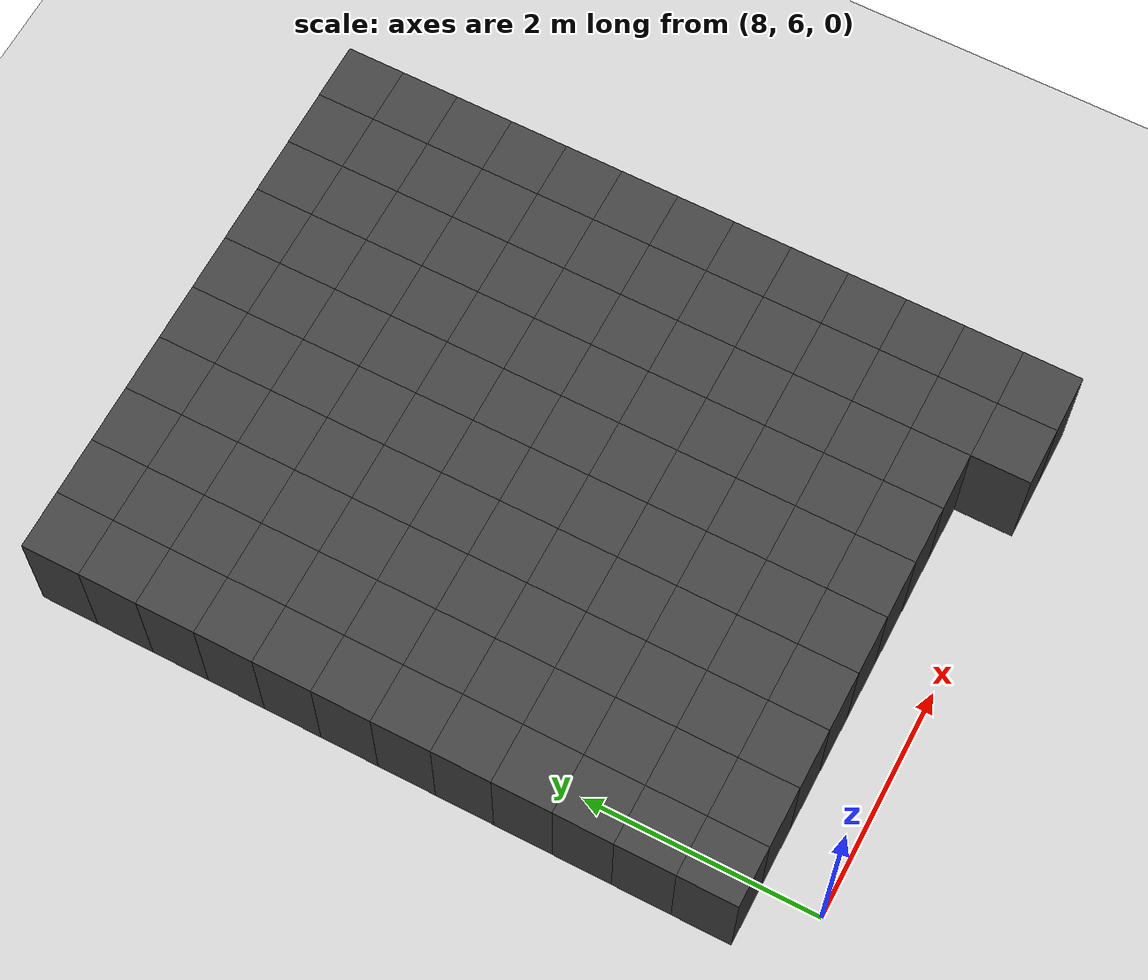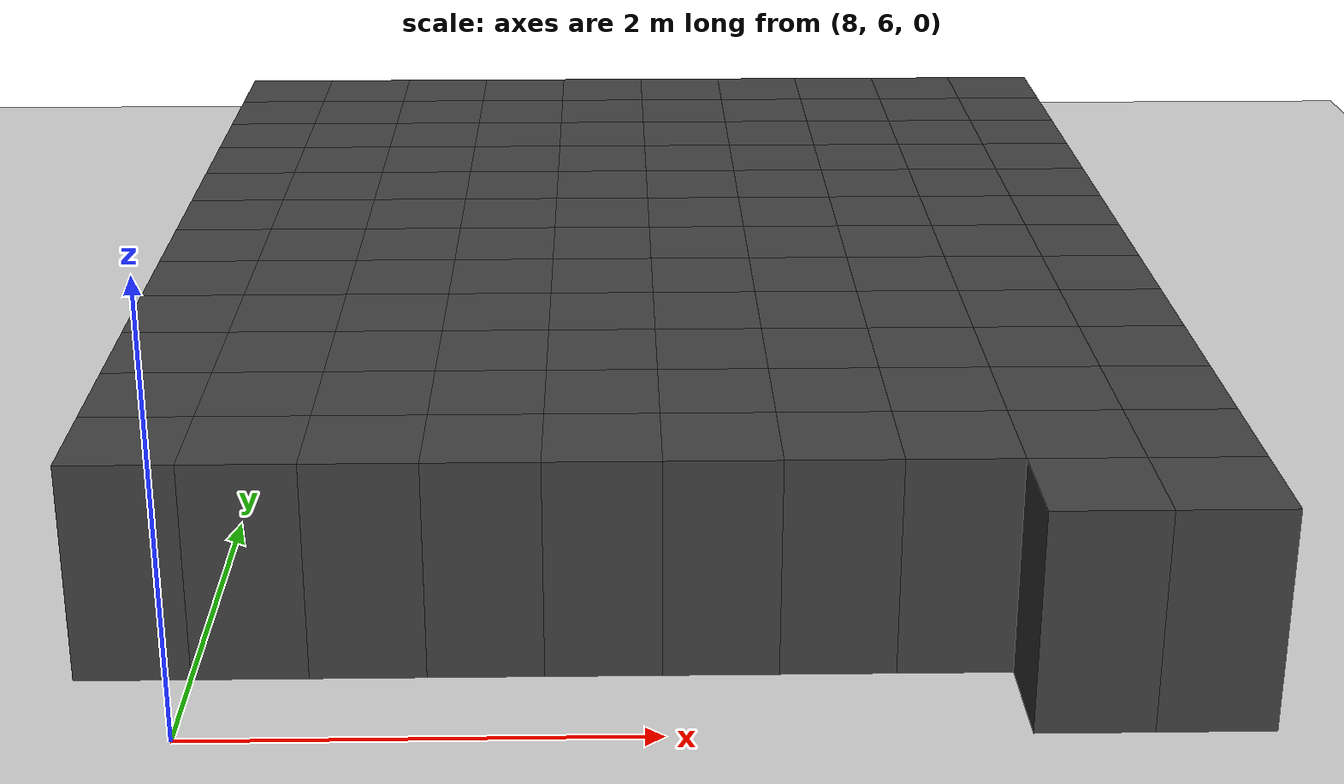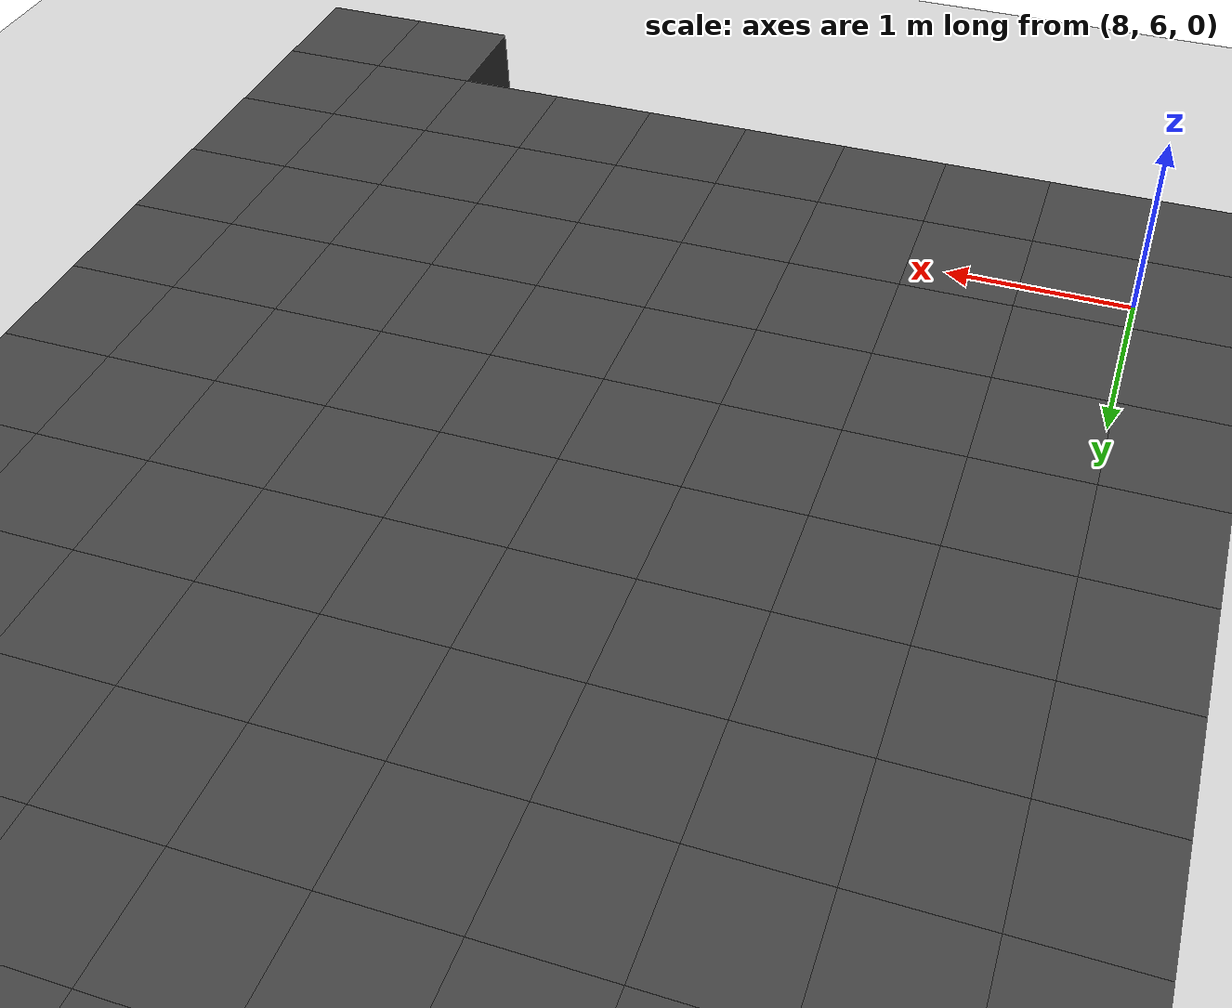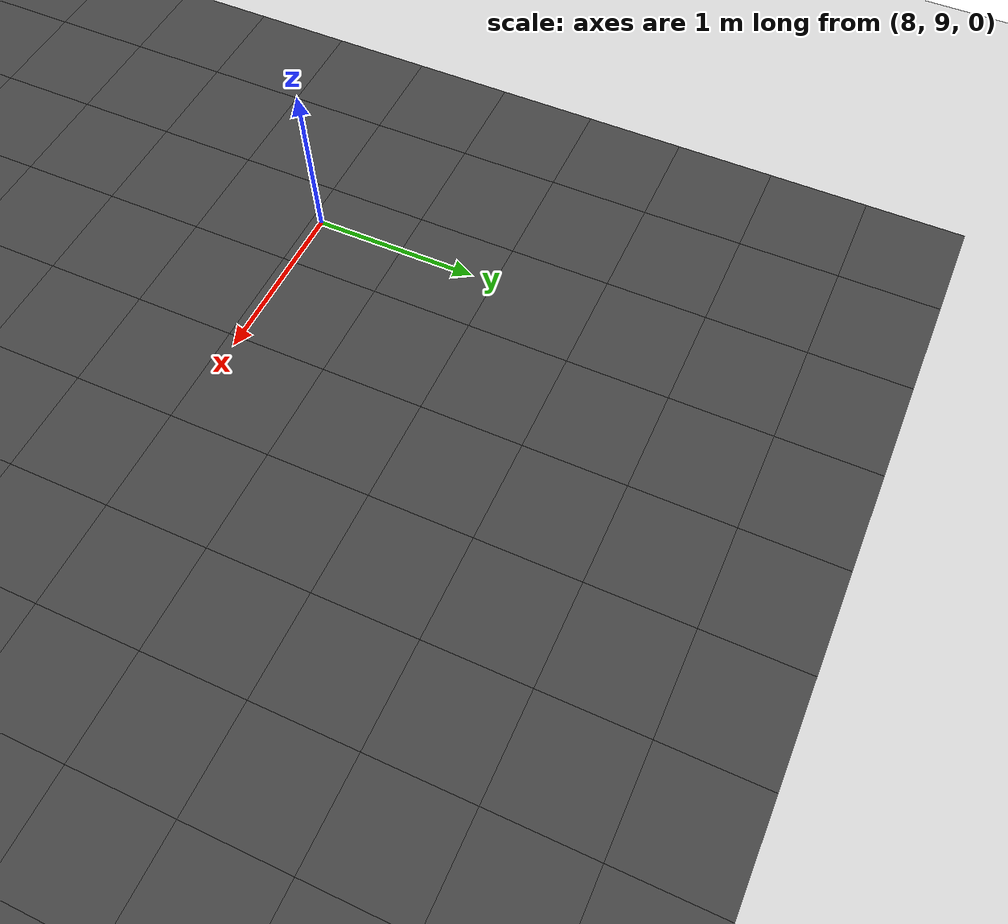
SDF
<sdf version="1.7">
 <world name="map_14888">
  <model name="ground_plane">
   <static>true</static>
   <link name="link">
    <collision name="collision">
     <geometry><plane><normal>0 0 1</normal><size>200 200</size></plane></geometry>
    </collision>
    <visual name="visual">
     <geometry><plane><normal>0 0 1</normal><size>200 200</size></plane></geometry>
     <material><ambient>0.8 0.8 0.8 1</ambient><diffuse>0.8 0.8 0.8 1</diffuse></material>
    </visual>
   </link>
  </model>
  <model name="maze_environment">
   <static>true</static>
   <link name="wall_40">
    <pose>7.750 12.250 0.500 0 0 0</pose>
    <collision name="col"><geometry><box><size>0.5 0.5 1.0</size></box></geometry></collision>
    <visual name="vis">
     <geometry><box><size>0.5 0.5 1.0</size></box></geometry>
     <material><ambient>0.15 0.15 0.15 1</ambient><diffuse>0.25 0.25 0.25 1</diffuse></material>
    </visual>
   </link>
   <link name="wall_41">
    <pose>8.250 12.250 0.500 0 0 0</pose>
    <collision name="col"><geometry><box><size>0.5 0.5 1.0</size></box></geometry></collision>
    <visual name="vis">
     <geometry><box><size>0.5 0.5 1.0</size></box></geometry>
     <material><ambient>0.15 0.15 0.15 1</ambient><diffuse>0.25 0.25 0.25 1</diffuse></material>
    </visual>
   </link>
   <link name="wall_42">
    <pose>8.750 12.250 0.500 0 0 0</pose>
    <collision name="col"><geometry><box><size>0.5 0.5 1.0</size></box></geometry></collision>
    <visual name="vis">
     <geometry><box><size>0.5 0.5 1.0</size></box></geometry>
     <material><ambient>0.15 0.15 0.15 1</ambient><diffuse>0.25 0.25 0.25 1</diffuse></material>
    </visual>
   </link>
   <link name="wall_43">
    <pose>9.250 12.250 0.500 0 0 0</pose>
    <collision name="col"><geometry><box><size>0.5 0.5 1.0</size></box></geometry></collision>
    <visual name="vis">
     <geometry><box><size>0.5 0.5 1.0</size></box></geometry>
     <material><ambient>0.15 0.15 0.15 1</ambient><diffuse>0.25 0.25 0.25 1</diffuse></material>
    </visual>
   </link>
   <link name="wall_44">
    <pose>9.750 12.250 0.500 0 0 0</pose>
    <collision name="col"><geometry><box><size>0.5 0.5 1.0</size></box></geometry></collision>
    <visual name="vis">
     <geometry><box><size>0.5 0.5 1.0</size></box></geometry>
     <material><ambient>0.15 0.15 0.15 1</ambient><diffuse>0.25 0.25 0.25 1</diffuse></material>
    </visual>
   </link>
   <link name="wall_45">
    <pose>10.250 12.250 0.500 0 0 0</pose>
    <collision name="col"><geometry><box><size>0.5 0.5 1.0</size></box></geometry></collision>
    <visual name="vis">
     <geometry><box><size>0.5 0.5 1.0</size></box></geometry>
     <material><ambient>0.15 0.15 0.15 1</ambient><diffuse>0.25 0.25 0.25 1</diffuse></material>
    </visual>
   </link>
   <link name="wall_46">
    <pose>10.750 12.250 0.500 0 0 0</pose>
    <collision name="col"><geometry><box><size>0.5 0.5 1.0</size></box></geometry></collision>
    <visual name="vis">
     <geometry><box><size>0.5 0.5 1.0</size></box></geometry>
     <material><ambient>0.15 0.15 0.15 1</ambient><diffuse>0.25 0.25 0.25 1</diffuse></material>
    </visual>
   </link>
   <link name="wall_47">
    <pose>11.250 12.250 0.500 0 0 0</pose>
    <collision name="col"><geometry><box><size>0.5 0.5 1.0</size></box></geometry></collision>
    <visual name="vis">
     <geometry><box><size>0.5 0.5 1.0</size></box></geometry>
     <material><ambient>0.15 0.15 0.15 1</ambient><diffuse>0.25 0.25 0.25 1</diffuse></material>
    </visual>
   </link>
   <link name="wall_48">
    <pose>11.750 12.250 0.500 0 0 0</pose>
    <collision name="col"><geometry><box><size>0.5 0.5 1.0</size></box></geometry></collision>
    <visual name="vis">
     <geometry><box><size>0.5 0.5 1.0</size></box></geometry>
     <material><ambient>0.15 0.15 0.15 1</ambient><diffuse>0.25 0.25 0.25 1</diffuse></material>
    </visual>
   </link>
   <link name="wall_49">
    <pose>12.250 12.250 0.500 0 0 0</pose>
    <collision name="col"><geometry><box><size>0.5 0.5 1.0</size></box></geometry></collision>
    <visual name="vis">
     <geometry><box><size>0.5 0.5 1.0</size></box></geometry>
     <material><ambient>0.15 0.15 0.15 1</ambient><diffuse>0.25 0.25 0.25 1</diffuse></material>
    </visual>
   </link>
   <link name="wall_87">
    <pose>7.750 11.750 0.500 0 0 0</pose>
    <collision name="col"><geometry><box><size>0.5 0.5 1.0</size></box></geometry></collision>
    <visual name="vis">
     <geometry><box><size>0.5 0.5 1.0</size></box></geometry>
     <material><ambient>0.15 0.15 0.15 1</ambient><diffuse>0.25 0.25 0.25 1</diffuse></material>
    </visual>
   </link>
   <link name="wall_88">
    <pose>8.250 11.750 0.500 0 0 0</pose>
    <collision name="col"><geometry><box><size>0.5 0.5 1.0</size></box></geometry></collision>
    <visual name="vis">
     <geometry><box><size>0.5 0.5 1.0</size></box></geometry>
     <material><ambient>0.15 0.15 0.15 1</ambient><diffuse>0.25 0.25 0.25 1</diffuse></material>
    </visual>
   </link>
   <link name="wall_89">
    <pose>8.750 11.750 0.500 0 0 0</pose>
    <collision name="col"><geometry><box><size>0.5 0.5 1.0</size></box></geometry></collision>
    <visual name="vis">
     <geometry><box><size>0.5 0.5 1.0</size></box></geometry>
     <material><ambient>0.15 0.15 0.15 1</ambient><diffuse>0.25 0.25 0.25 1</diffuse></material>
    </visual>
   </link>
   <link name="wall_90">
    <pose>9.250 11.750 0.500 0 0 0</pose>
    <collision name="col"><geometry><box><size>0.5 0.5 1.0</size></box></geometry></collision>
    <visual name="vis">
     <geometry><box><size>0.5 0.5 1.0</size></box></geometry>
     <material><ambient>0.15 0.15 0.15 1</ambient><diffuse>0.25 0.25 0.25 1</diffuse></material>
    </visual>
   </link>
   <link name="wall_91">
    <pose>9.750 11.750 0.500 0 0 0</pose>
    <collision name="col"><geometry><box><size>0.5 0.5 1.0</size></box></geometry></collision>
    <visual name="vis">
     <geometry><box><size>0.5 0.5 1.0</size></box></geometry>
     <material><ambient>0.15 0.15 0.15 1</ambient><diffuse>0.25 0.25 0.25 1</diffuse></material>
    </visual>
   </link>
   <link name="wall_92">
    <pose>10.250 11.750 0.500 0 0 0</pose>
    <collision name="col"><geometry><box><size>0.5 0.5 1.0</size></box></geometry></collision>
    <visual name="vis">
     <geometry><box><size>0.5 0.5 1.0</size></box></geometry>
     <material><ambient>0.15 0.15 0.15 1</ambient><diffuse>0.25 0.25 0.25 1</diffuse></material>
    </visual>
   </link>
   <link name="wall_93">
    <pose>10.750 11.750 0.500 0 0 0</pose>
    <collision name="col"><geometry><box><size>0.5 0.5 1.0</size></box></geometry></collision>
    <visual name="vis">
     <geometry><box><size>0.5 0.5 1.0</size></box></geometry>
     <material><ambient>0.15 0.15 0.15 1</ambient><diffuse>0.25 0.25 0.25 1</diffuse></material>
    </visual>
   </link>
   <link name="wall_94">
    <pose>11.250 11.750 0.500 0 0 0</pose>
    <collision name="col"><geometry><box><size>0.5 0.5 1.0</size></box></geometry></collision>
    <visual name="vis">
     <geometry><box><size>0.5 0.5 1.0</size></box></geometry>
     <material><ambient>0.15 0.15 0.15 1</ambient><diffuse>0.25 0.25 0.25 1</diffuse></material>
    </visual>
   </link>
   <link name="wall_95">
    <pose>11.750 11.750 0.500 0 0 0</pose>
    <collision name="col"><geometry><box><size>0.5 0.5 1.0</size></box></geometry></collision>
    <visual name="vis">
     <geometry><box><size>0.5 0.5 1.0</size></box></geometry>
     <material><ambient>0.15 0.15 0.15 1</ambient><diffuse>0.25 0.25 0.25 1</diffuse></material>
    </visual>
   </link>
   <link name="wall_96">
    <pose>12.250 11.750 0.500 0 0 0</pose>
    <collision name="col"><geometry><box><size>0.5 0.5 1.0</size></box></geometry></collision>
    <visual name="vis">
     <geometry><box><size>0.5 0.5 1.0</size></box></geometry>
     <material><ambient>0.15 0.15 0.15 1</ambient><diffuse>0.25 0.25 0.25 1</diffuse></material>
    </visual>
   </link>
   <link name="wall_128">
    <pose>7.750 11.250 0.500 0 0 0</pose>
    <collision name="col"><geometry><box><size>0.5 0.5 1.0</size></box></geometry></collision>
    <visual name="vis">
     <geometry><box><size>0.5 0.5 1.0</size></box></geometry>
     <material><ambient>0.15 0.15 0.15 1</ambient><diffuse>0.25 0.25 0.25 1</diffuse></material>
    </visual>
   </link>
   <link name="wall_129">
    <pose>8.250 11.250 0.500 0 0 0</pose>
    <collision name="col"><geometry><box><size>0.5 0.5 1.0</size></box></geometry></collision>
    <visual name="vis">
     <geometry><box><size>0.5 0.5 1.0</size></box></geometry>
     <material><ambient>0.15 0.15 0.15 1</ambient><diffuse>0.25 0.25 0.25 1</diffuse></material>
    </visual>
   </link>
   <link name="wall_130">
    <pose>8.750 11.250 0.500 0 0 0</pose>
    <collision name="col"><geometry><box><size>0.5 0.5 1.0</size></box></geometry></collision>
    <visual name="vis">
     <geometry><box><size>0.5 0.5 1.0</size></box></geometry>
     <material><ambient>0.15 0.15 0.15 1</ambient><diffuse>0.25 0.25 0.25 1</diffuse></material>
    </visual>
   </link>
   <link name="wall_131">
    <pose>9.250 11.250 0.500 0 0 0</pose>
    <collision name="col"><geometry><box><size>0.5 0.5 1.0</size></box></geometry></collision>
    <visual name="vis">
     <geometry><box><size>0.5 0.5 1.0</size></box></geometry>
     <material><ambient>0.15 0.15 0.15 1</ambient><diffuse>0.25 0.25 0.25 1</diffuse></material>
    </visual>
   </link>
   <link name="wall_132">
    <pose>9.750 11.250 0.500 0 0 0</pose>
    <collision name="col"><geometry><box><size>0.5 0.5 1.0</size></box></geometry></collision>
    <visual name="vis">
     <geometry><box><size>0.5 0.5 1.0</size></box></geometry>
     <material><ambient>0.15 0.15 0.15 1</ambient><diffuse>0.25 0.25 0.25 1</diffuse></material>
    </visual>
   </link>
   <link name="wall_133">
    <pose>10.250 11.250 0.500 0 0 0</pose>
    <collision name="col"><geometry><box><size>0.5 0.5 1.0</size></box></geometry></collision>
    <visual name="vis">
     <geometry><box><size>0.5 0.5 1.0</size></box></geometry>
     <material><ambient>0.15 0.15 0.15 1</ambient><diffuse>0.25 0.25 0.25 1</diffuse></material>
    </visual>
   </link>
   <link name="wall_134">
    <pose>10.750 11.250 0.500 0 0 0</pose>
    <collision name="col"><geometry><box><size>0.5 0.5 1.0</size></box></geometry></collision>
    <visual name="vis">
     <geometry><box><size>0.5 0.5 1.0</size></box></geometry>
     <material><ambient>0.15 0.15 0.15 1</ambient><diffuse>0.25 0.25 0.25 1</diffuse></material>
    </visual>
   </link>
   <link name="wall_135">
    <pose>11.250 11.250 0.500 0 0 0</pose>
    <collision name="col"><geometry><box><size>0.5 0.5 1.0</size></box></geometry></collision>
    <visual name="vis">
     <geometry><box><size>0.5 0.5 1.0</size></box></geometry>
     <material><ambient>0.15 0.15 0.15 1</ambient><diffuse>0.25 0.25 0.25 1</diffuse></material>
    </visual>
   </link>
   <link name="wall_136">
    <pose>11.750 11.250 0.500 0 0 0</pose>
    <collision name="col"><geometry><box><size>0.5 0.5 1.0</size></box></geometry></collision>
    <visual name="vis">
     <geometry><box><size>0.5 0.5 1.0</size></box></geometry>
     <material><ambient>0.15 0.15 0.15 1</ambient><diffuse>0.25 0.25 0.25 1</diffuse></material>
    </visual>
   </link>
   <link name="wall_137">
    <pose>12.250 11.250 0.500 0 0 0</pose>
    <collision name="col"><geometry><box><size>0.5 0.5 1.0</size></box></geometry></collision>
    <visual name="vis">
     <geometry><box><size>0.5 0.5 1.0</size></box></geometry>
     <material><ambient>0.15 0.15 0.15 1</ambient><diffuse>0.25 0.25 0.25 1</diffuse></material>
    </visual>
   </link>
   <link name="wall_169">
    <pose>7.750 10.750 0.500 0 0 0</pose>
    <collision name="col"><geometry><box><size>0.5 0.5 1.0</size></box></geometry></collision>
    <visual name="vis">
     <geometry><box><size>0.5 0.5 1.0</size></box></geometry>
     <material><ambient>0.15 0.15 0.15 1</ambient><diffuse>0.25 0.25 0.25 1</diffuse></material>
    </visual>
   </link>
   <link name="wall_170">
    <pose>8.250 10.750 0.500 0 0 0</pose>
    <collision name="col"><geometry><box><size>0.5 0.5 1.0</size></box></geometry></collision>
    <visual name="vis">
     <geometry><box><size>0.5 0.5 1.0</size></box></geometry>
     <material><ambient>0.15 0.15 0.15 1</ambient><diffuse>0.25 0.25 0.25 1</diffuse></material>
    </visual>
   </link>
   <link name="wall_171">
    <pose>8.750 10.750 0.500 0 0 0</pose>
    <collision name="col"><geometry><box><size>0.5 0.5 1.0</size></box></geometry></collision>
    <visual name="vis">
     <geometry><box><size>0.5 0.5 1.0</size></box></geometry>
     <material><ambient>0.15 0.15 0.15 1</ambient><diffuse>0.25 0.25 0.25 1</diffuse></material>
    </visual>
   </link>
   <link name="wall_172">
    <pose>9.250 10.750 0.500 0 0 0</pose>
    <collision name="col"><geometry><box><size>0.5 0.5 1.0</size></box></geometry></collision>
    <visual name="vis">
     <geometry><box><size>0.5 0.5 1.0</size></box></geometry>
     <material><ambient>0.15 0.15 0.15 1</ambient><diffuse>0.25 0.25 0.25 1</diffuse></material>
    </visual>
   </link>
   <link name="wall_173">
    <pose>9.750 10.750 0.500 0 0 0</pose>
    <collision name="col"><geometry><box><size>0.5 0.5 1.0</size></box></geometry></collision>
    <visual name="vis">
     <geometry><box><size>0.5 0.5 1.0</size></box></geometry>
     <material><ambient>0.15 0.15 0.15 1</ambient><diffuse>0.25 0.25 0.25 1</diffuse></material>
    </visual>
   </link>
   <link name="wall_174">
    <pose>10.250 10.750 0.500 0 0 0</pose>
    <collision name="col"><geometry><box><size>0.5 0.5 1.0</size></box></geometry></collision>
    <visual name="vis">
     <geometry><box><size>0.5 0.5 1.0</size></box></geometry>
     <material><ambient>0.15 0.15 0.15 1</ambient><diffuse>0.25 0.25 0.25 1</diffuse></material>
    </visual>
   </link>
   <link name="wall_175">
    <pose>10.750 10.750 0.500 0 0 0</pose>
    <collision name="col"><geometry><box><size>0.5 0.5 1.0</size></box></geometry></collision>
    <visual name="vis">
     <geometry><box><size>0.5 0.5 1.0</size></box></geometry>
     <material><ambient>0.15 0.15 0.15 1</ambient><diffuse>0.25 0.25 0.25 1</diffuse></material>
    </visual>
   </link>
   <link name="wall_176">
    <pose>11.250 10.750 0.500 0 0 0</pose>
    <collision name="col"><geometry><box><size>0.5 0.5 1.0</size></box></geometry></collision>
    <visual name="vis">
     <geometry><box><size>0.5 0.5 1.0</size></box></geometry>
     <material><ambient>0.15 0.15 0.15 1</ambient><diffuse>0.25 0.25 0.25 1</diffuse></material>
    </visual>
   </link>
   <link name="wall_177">
    <pose>11.750 10.750 0.500 0 0 0</pose>
    <collision name="col"><geometry><box><size>0.5 0.5 1.0</size></box></geometry></collision>
    <visual name="vis">
     <geometry><box><size>0.5 0.5 1.0</size></box></geometry>
     <material><ambient>0.15 0.15 0.15 1</ambient><diffuse>0.25 0.25 0.25 1</diffuse></material>
    </visual>
   </link>
   <link name="wall_178">
    <pose>12.250 10.750 0.500 0 0 0</pose>
    <collision name="col"><geometry><box><size>0.5 0.5 1.0</size></box></geometry></collision>
    <visual name="vis">
     <geometry><box><size>0.5 0.5 1.0</size></box></geometry>
     <material><ambient>0.15 0.15 0.15 1</ambient><diffuse>0.25 0.25 0.25 1</diffuse></material>
    </visual>
   </link>
   <link name="wall_212">
    <pose>7.750 10.250 0.500 0 0 0</pose>
    <collision name="col"><geometry><box><size>0.5 0.5 1.0</size></box></geometry></collision>
    <visual name="vis">
     <geometry><box><size>0.5 0.5 1.0</size></box></geometry>
     <material><ambient>0.15 0.15 0.15 1</ambient><diffuse>0.25 0.25 0.25 1</diffuse></material>
    </visual>
   </link>
   <link name="wall_213">
    <pose>8.250 10.250 0.500 0 0 0</pose>
    <collision name="col"><geometry><box><size>0.5 0.5 1.0</size></box></geometry></collision>
    <visual name="vis">
     <geometry><box><size>0.5 0.5 1.0</size></box></geometry>
     <material><ambient>0.15 0.15 0.15 1</ambient><diffuse>0.25 0.25 0.25 1</diffuse></material>
    </visual>
   </link>
   <link name="wall_214">
    <pose>8.750 10.250 0.500 0 0 0</pose>
    <collision name="col"><geometry><box><size>0.5 0.5 1.0</size></box></geometry></collision>
    <visual name="vis">
     <geometry><box><size>0.5 0.5 1.0</size></box></geometry>
     <material><ambient>0.15 0.15 0.15 1</ambient><diffuse>0.25 0.25 0.25 1</diffuse></material>
    </visual>
   </link>
   <link name="wall_215">
    <pose>9.250 10.250 0.500 0 0 0</pose>
    <collision name="col"><geometry><box><size>0.5 0.5 1.0</size></box></geometry></collision>
    <visual name="vis">
     <geometry><box><size>0.5 0.5 1.0</size></box></geometry>
     <material><ambient>0.15 0.15 0.15 1</ambient><diffuse>0.25 0.25 0.25 1</diffuse></material>
    </visual>
   </link>
   <link name="wall_216">
    <pose>9.750 10.250 0.500 0 0 0</pose>
    <collision name="col"><geometry><box><size>0.5 0.5 1.0</size></box></geometry></collision>
    <visual name="vis">
     <geometry><box><size>0.5 0.5 1.0</size></box></geometry>
     <material><ambient>0.15 0.15 0.15 1</ambient><diffuse>0.25 0.25 0.25 1</diffuse></material>
    </visual>
   </link>
   <link name="wall_217">
    <pose>10.250 10.250 0.500 0 0 0</pose>
    <collision name="col"><geometry><box><size>0.5 0.5 1.0</size></box></geometry></collision>
    <visual name="vis">
     <geometry><box><size>0.5 0.5 1.0</size></box></geometry>
     <material><ambient>0.15 0.15 0.15 1</ambient><diffuse>0.25 0.25 0.25 1</diffuse></material>
    </visual>
   </link>
   <link name="wall_218">
    <pose>10.750 10.250 0.500 0 0 0</pose>
    <collision name="col"><geometry><box><size>0.5 0.5 1.0</size></box></geometry></collision>
    <visual name="vis">
     <geometry><box><size>0.5 0.5 1.0</size></box></geometry>
     <material><ambient>0.15 0.15 0.15 1</ambient><diffuse>0.25 0.25 0.25 1</diffuse></material>
    </visual>
   </link>
   <link name="wall_219">
    <pose>11.250 10.250 0.500 0 0 0</pose>
    <collision name="col"><geometry><box><size>0.5 0.5 1.0</size></box></geometry></collision>
    <visual name="vis">
     <geometry><box><size>0.5 0.5 1.0</size></box></geometry>
     <material><ambient>0.15 0.15 0.15 1</ambient><diffuse>0.25 0.25 0.25 1</diffuse></material>
    </visual>
   </link>
   <link name="wall_220">
    <pose>11.750 10.250 0.500 0 0 0</pose>
    <collision name="col"><geometry><box><size>0.5 0.5 1.0</size></box></geometry></collision>
    <visual name="vis">
     <geometry><box><size>0.5 0.5 1.0</size></box></geometry>
     <material><ambient>0.15 0.15 0.15 1</ambient><diffuse>0.25 0.25 0.25 1</diffuse></material>
    </visual>
   </link>
   <link name="wall_221">
    <pose>12.250 10.250 0.500 0 0 0</pose>
    <collision name="col"><geometry><box><size>0.5 0.5 1.0</size></box></geometry></collision>
    <visual name="vis">
     <geometry><box><size>0.5 0.5 1.0</size></box></geometry>
     <material><ambient>0.15 0.15 0.15 1</ambient><diffuse>0.25 0.25 0.25 1</diffuse></material>
    </visual>
   </link>
   <link name="wall_254">
    <pose>7.750 9.750 0.500 0 0 0</pose>
    <collision name="col"><geometry><box><size>0.5 0.5 1.0</size></box></geometry></collision>
    <visual name="vis">
     <geometry><box><size>0.5 0.5 1.0</size></box></geometry>
     <material><ambient>0.15 0.15 0.15 1</ambient><diffuse>0.25 0.25 0.25 1</diffuse></material>
    </visual>
   </link>
   <link name="wall_255">
    <pose>8.250 9.750 0.500 0 0 0</pose>
    <collision name="col"><geometry><box><size>0.5 0.5 1.0</size></box></geometry></collision>
    <visual name="vis">
     <geometry><box><size>0.5 0.5 1.0</size></box></geometry>
     <material><ambient>0.15 0.15 0.15 1</ambient><diffuse>0.25 0.25 0.25 1</diffuse></material>
    </visual>
   </link>
   <link name="wall_256">
    <pose>8.750 9.750 0.500 0 0 0</pose>
    <collision name="col"><geometry><box><size>0.5 0.5 1.0</size></box></geometry></collision>
    <visual name="vis">
     <geometry><box><size>0.5 0.5 1.0</size></box></geometry>
     <material><ambient>0.15 0.15 0.15 1</ambient><diffuse>0.25 0.25 0.25 1</diffuse></material>
    </visual>
   </link>
   <link name="wall_257">
    <pose>9.250 9.750 0.500 0 0 0</pose>
    <collision name="col"><geometry><box><size>0.5 0.5 1.0</size></box></geometry></collision>
    <visual name="vis">
     <geometry><box><size>0.5 0.5 1.0</size></box></geometry>
     <material><ambient>0.15 0.15 0.15 1</ambient><diffuse>0.25 0.25 0.25 1</diffuse></material>
    </visual>
   </link>
   <link name="wall_258">
    <pose>9.750 9.750 0.500 0 0 0</pose>
    <collision name="col"><geometry><box><size>0.5 0.5 1.0</size></box></geometry></collision>
    <visual name="vis">
     <geometry><box><size>0.5 0.5 1.0</size></box></geometry>
     <material><ambient>0.15 0.15 0.15 1</ambient><diffuse>0.25 0.25 0.25 1</diffuse></material>
    </visual>
   </link>
   <link name="wall_259">
    <pose>10.250 9.750 0.500 0 0 0</pose>
    <collision name="col"><geometry><box><size>0.5 0.5 1.0</size></box></geometry></collision>
    <visual name="vis">
     <geometry><box><size>0.5 0.5 1.0</size></box></geometry>
     <material><ambient>0.15 0.15 0.15 1</ambient><diffuse>0.25 0.25 0.25 1</diffuse></material>
    </visual>
   </link>
   <link name="wall_260">
    <pose>10.750 9.750 0.500 0 0 0</pose>
    <collision name="col"><geometry><box><size>0.5 0.5 1.0</size></box></geometry></collision>
    <visual name="vis">
     <geometry><box><size>0.5 0.5 1.0</size></box></geometry>
     <material><ambient>0.15 0.15 0.15 1</ambient><diffuse>0.25 0.25 0.25 1</diffuse></material>
    </visual>
   </link>
   <link name="wall_261">
    <pose>11.250 9.750 0.500 0 0 0</pose>
    <collision name="col"><geometry><box><size>0.5 0.5 1.0</size></box></geometry></collision>
    <visual name="vis">
     <geometry><box><size>0.5 0.5 1.0</size></box></geometry>
     <material><ambient>0.15 0.15 0.15 1</ambient><diffuse>0.25 0.25 0.25 1</diffuse></material>
    </visual>
   </link>
   <link name="wall_262">
    <pose>11.750 9.750 0.500 0 0 0</pose>
    <collision name="col"><geometry><box><size>0.5 0.5 1.0</size></box></geometry></collision>
    <visual name="vis">
     <geometry><box><size>0.5 0.5 1.0</size></box></geometry>
     <material><ambient>0.15 0.15 0.15 1</ambient><diffuse>0.25 0.25 0.25 1</diffuse></material>
    </visual>
   </link>
   <link name="wall_263">
    <pose>12.250 9.750 0.500 0 0 0</pose>
    <collision name="col"><geometry><box><size>0.5 0.5 1.0</size></box></geometry></collision>
    <visual name="vis">
     <geometry><box><size>0.5 0.5 1.0</size></box></geometry>
     <material><ambient>0.15 0.15 0.15 1</ambient><diffuse>0.25 0.25 0.25 1</diffuse></material>
    </visual>
   </link>
   <link name="wall_292">
    <pose>7.750 9.250 0.500 0 0 0</pose>
    <collision name="col"><geometry><box><size>0.5 0.5 1.0</size></box></geometry></collision>
    <visual name="vis">
     <geometry><box><size>0.5 0.5 1.0</size></box></geometry>
     <material><ambient>0.15 0.15 0.15 1</ambient><diffuse>0.25 0.25 0.25 1</diffuse></material>
    </visual>
   </link>
   <link name="wall_293">
    <pose>8.250 9.250 0.500 0 0 0</pose>
    <collision name="col"><geometry><box><size>0.5 0.5 1.0</size></box></geometry></collision>
    <visual name="vis">
     <geometry><box><size>0.5 0.5 1.0</size></box></geometry>
     <material><ambient>0.15 0.15 0.15 1</ambient><diffuse>0.25 0.25 0.25 1</diffuse></material>
    </visual>
   </link>
   <link name="wall_294">
    <pose>8.750 9.250 0.500 0 0 0</pose>
    <collision name="col"><geometry><box><size>0.5 0.5 1.0</size></box></geometry></collision>
    <visual name="vis">
     <geometry><box><size>0.5 0.5 1.0</size></box></geometry>
     <material><ambient>0.15 0.15 0.15 1</ambient><diffuse>0.25 0.25 0.25 1</diffuse></material>
    </visual>
   </link>
   <link name="wall_295">
    <pose>9.250 9.250 0.500 0 0 0</pose>
    <collision name="col"><geometry><box><size>0.5 0.5 1.0</size></box></geometry></collision>
    <visual name="vis">
     <geometry><box><size>0.5 0.5 1.0</size></box></geometry>
     <material><ambient>0.15 0.15 0.15 1</ambient><diffuse>0.25 0.25 0.25 1</diffuse></material>
    </visual>
   </link>
   <link name="wall_296">
    <pose>9.750 9.250 0.500 0 0 0</pose>
    <collision name="col"><geometry><box><size>0.5 0.5 1.0</size></box></geometry></collision>
    <visual name="vis">
     <geometry><box><size>0.5 0.5 1.0</size></box></geometry>
     <material><ambient>0.15 0.15 0.15 1</ambient><diffuse>0.25 0.25 0.25 1</diffuse></material>
    </visual>
   </link>
   <link name="wall_297">
    <pose>10.250 9.250 0.500 0 0 0</pose>
    <collision name="col"><geometry><box><size>0.5 0.5 1.0</size></box></geometry></collision>
    <visual name="vis">
     <geometry><box><size>0.5 0.5 1.0</size></box></geometry>
     <material><ambient>0.15 0.15 0.15 1</ambient><diffuse>0.25 0.25 0.25 1</diffuse></material>
    </visual>
   </link>
   <link name="wall_298">
    <pose>10.750 9.250 0.500 0 0 0</pose>
    <collision name="col"><geometry><box><size>0.5 0.5 1.0</size></box></geometry></collision>
    <visual name="vis">
     <geometry><box><size>0.5 0.5 1.0</size></box></geometry>
     <material><ambient>0.15 0.15 0.15 1</ambient><diffuse>0.25 0.25 0.25 1</diffuse></material>
    </visual>
   </link>
   <link name="wall_299">
    <pose>11.250 9.250 0.500 0 0 0</pose>
    <collision name="col"><geometry><box><size>0.5 0.5 1.0</size></box></geometry></collision>
    <visual name="vis">
     <geometry><box><size>0.5 0.5 1.0</size></box></geometry>
     <material><ambient>0.15 0.15 0.15 1</ambient><diffuse>0.25 0.25 0.25 1</diffuse></material>
    </visual>
   </link>
   <link name="wall_300">
    <pose>11.750 9.250 0.500 0 0 0</pose>
    <collision name="col"><geometry><box><size>0.5 0.5 1.0</size></box></geometry></collision>
    <visual name="vis">
     <geometry><box><size>0.5 0.5 1.0</size></box></geometry>
     <material><ambient>0.15 0.15 0.15 1</ambient><diffuse>0.25 0.25 0.25 1</diffuse></material>
    </visual>
   </link>
   <link name="wall_301">
    <pose>12.250 9.250 0.500 0 0 0</pose>
    <collision name="col"><geometry><box><size>0.5 0.5 1.0</size></box></geometry></collision>
    <visual name="vis">
     <geometry><box><size>0.5 0.5 1.0</size></box></geometry>
     <material><ambient>0.15 0.15 0.15 1</ambient><diffuse>0.25 0.25 0.25 1</diffuse></material>
    </visual>
   </link>
   <link name="wall_326">
    <pose>7.750 8.750 0.500 0 0 0</pose>
    <collision name="col"><geometry><box><size>0.5 0.5 1.0</size></box></geometry></collision>
    <visual name="vis">
     <geometry><box><size>0.5 0.5 1.0</size></box></geometry>
     <material><ambient>0.15 0.15 0.15 1</ambient><diffuse>0.25 0.25 0.25 1</diffuse></material>
    </visual>
   </link>
   <link name="wall_327">
    <pose>8.250 8.750 0.500 0 0 0</pose>
    <collision name="col"><geometry><box><size>0.5 0.5 1.0</size></box></geometry></collision>
    <visual name="vis">
     <geometry><box><size>0.5 0.5 1.0</size></box></geometry>
     <material><ambient>0.15 0.15 0.15 1</ambient><diffuse>0.25 0.25 0.25 1</diffuse></material>
    </visual>
   </link>
   <link name="wall_328">
    <pose>8.750 8.750 0.500 0 0 0</pose>
    <collision name="col"><geometry><box><size>0.5 0.5 1.0</size></box></geometry></collision>
    <visual name="vis">
     <geometry><box><size>0.5 0.5 1.0</size></box></geometry>
     <material><ambient>0.15 0.15 0.15 1</ambient><diffuse>0.25 0.25 0.25 1</diffuse></material>
    </visual>
   </link>
   <link name="wall_329">
    <pose>9.250 8.750 0.500 0 0 0</pose>
    <collision name="col"><geometry><box><size>0.5 0.5 1.0</size></box></geometry></collision>
    <visual name="vis">
     <geometry><box><size>0.5 0.5 1.0</size></box></geometry>
     <material><ambient>0.15 0.15 0.15 1</ambient><diffuse>0.25 0.25 0.25 1</diffuse></material>
    </visual>
   </link>
   <link name="wall_330">
    <pose>9.750 8.750 0.500 0 0 0</pose>
    <collision name="col"><geometry><box><size>0.5 0.5 1.0</size></box></geometry></collision>
    <visual name="vis">
     <geometry><box><size>0.5 0.5 1.0</size></box></geometry>
     <material><ambient>0.15 0.15 0.15 1</ambient><diffuse>0.25 0.25 0.25 1</diffuse></material>
    </visual>
   </link>
   <link name="wall_331">
    <pose>10.250 8.750 0.500 0 0 0</pose>
    <collision name="col"><geometry><box><size>0.5 0.5 1.0</size></box></geometry></collision>
    <visual name="vis">
     <geometry><box><size>0.5 0.5 1.0</size></box></geometry>
     <material><ambient>0.15 0.15 0.15 1</ambient><diffuse>0.25 0.25 0.25 1</diffuse></material>
    </visual>
   </link>
   <link name="wall_332">
    <pose>10.750 8.750 0.500 0 0 0</pose>
    <collision name="col"><geometry><box><size>0.5 0.5 1.0</size></box></geometry></collision>
    <visual name="vis">
     <geometry><box><size>0.5 0.5 1.0</size></box></geometry>
     <material><ambient>0.15 0.15 0.15 1</ambient><diffuse>0.25 0.25 0.25 1</diffuse></material>
    </visual>
   </link>
   <link name="wall_333">
    <pose>11.250 8.750 0.500 0 0 0</pose>
    <collision name="col"><geometry><box><size>0.5 0.5 1.0</size></box></geometry></collision>
    <visual name="vis">
     <geometry><box><size>0.5 0.5 1.0</size></box></geometry>
     <material><ambient>0.15 0.15 0.15 1</ambient><diffuse>0.25 0.25 0.25 1</diffuse></material>
    </visual>
   </link>
   <link name="wall_334">
    <pose>11.750 8.750 0.500 0 0 0</pose>
    <collision name="col"><geometry><box><size>0.5 0.5 1.0</size></box></geometry></collision>
    <visual name="vis">
     <geometry><box><size>0.5 0.5 1.0</size></box></geometry>
     <material><ambient>0.15 0.15 0.15 1</ambient><diffuse>0.25 0.25 0.25 1</diffuse></material>
    </visual>
   </link>
   <link name="wall_335">
    <pose>12.250 8.750 0.500 0 0 0</pose>
    <collision name="col"><geometry><box><size>0.5 0.5 1.0</size></box></geometry></collision>
    <visual name="vis">
     <geometry><box><size>0.5 0.5 1.0</size></box></geometry>
     <material><ambient>0.15 0.15 0.15 1</ambient><diffuse>0.25 0.25 0.25 1</diffuse></material>
    </visual>
   </link>
   <link name="wall_360">
    <pose>7.750 8.250 0.500 0 0 0</pose>
    <collision name="col"><geometry><box><size>0.5 0.5 1.0</size></box></geometry></collision>
    <visual name="vis">
     <geometry><box><size>0.5 0.5 1.0</size></box></geometry>
     <material><ambient>0.15 0.15 0.15 1</ambient><diffuse>0.25 0.25 0.25 1</diffuse></material>
    </visual>
   </link>
   <link name="wall_361">
    <pose>8.250 8.250 0.500 0 0 0</pose>
    <collision name="col"><geometry><box><size>0.5 0.5 1.0</size></box></geometry></collision>
    <visual name="vis">
     <geometry><box><size>0.5 0.5 1.0</size></box></geometry>
     <material><ambient>0.15 0.15 0.15 1</ambient><diffuse>0.25 0.25 0.25 1</diffuse></material>
    </visual>
   </link>
   <link name="wall_362">
    <pose>8.750 8.250 0.500 0 0 0</pose>
    <collision name="col"><geometry><box><size>0.5 0.5 1.0</size></box></geometry></collision>
    <visual name="vis">
     <geometry><box><size>0.5 0.5 1.0</size></box></geometry>
     <material><ambient>0.15 0.15 0.15 1</ambient><diffuse>0.25 0.25 0.25 1</diffuse></material>
    </visual>
   </link>
   <link name="wall_363">
    <pose>9.250 8.250 0.500 0 0 0</pose>
    <collision name="col"><geometry><box><size>0.5 0.5 1.0</size></box></geometry></collision>
    <visual name="vis">
     <geometry><box><size>0.5 0.5 1.0</size></box></geometry>
     <material><ambient>0.15 0.15 0.15 1</ambient><diffuse>0.25 0.25 0.25 1</diffuse></material>
    </visual>
   </link>
   <link name="wall_364">
    <pose>9.750 8.250 0.500 0 0 0</pose>
    <collision name="col"><geometry><box><size>0.5 0.5 1.0</size></box></geometry></collision>
    <visual name="vis">
     <geometry><box><size>0.5 0.5 1.0</size></box></geometry>
     <material><ambient>0.15 0.15 0.15 1</ambient><diffuse>0.25 0.25 0.25 1</diffuse></material>
    </visual>
   </link>
   <link name="wall_365">
    <pose>10.250 8.250 0.500 0 0 0</pose>
    <collision name="col"><geometry><box><size>0.5 0.5 1.0</size></box></geometry></collision>
    <visual name="vis">
     <geometry><box><size>0.5 0.5 1.0</size></box></geometry>
     <material><ambient>0.15 0.15 0.15 1</ambient><diffuse>0.25 0.25 0.25 1</diffuse></material>
    </visual>
   </link>
   <link name="wall_366">
    <pose>10.750 8.250 0.500 0 0 0</pose>
    <collision name="col"><geometry><box><size>0.5 0.5 1.0</size></box></geometry></collision>
    <visual name="vis">
     <geometry><box><size>0.5 0.5 1.0</size></box></geometry>
     <material><ambient>0.15 0.15 0.15 1</ambient><diffuse>0.25 0.25 0.25 1</diffuse></material>
    </visual>
   </link>
   <link name="wall_367">
    <pose>11.250 8.250 0.500 0 0 0</pose>
    <collision name="col"><geometry><box><size>0.5 0.5 1.0</size></box></geometry></collision>
    <visual name="vis">
     <geometry><box><size>0.5 0.5 1.0</size></box></geometry>
     <material><ambient>0.15 0.15 0.15 1</ambient><diffuse>0.25 0.25 0.25 1</diffuse></material>
    </visual>
   </link>
   <link name="wall_368">
    <pose>11.750 8.250 0.500 0 0 0</pose>
    <collision name="col"><geometry><box><size>0.5 0.5 1.0</size></box></geometry></collision>
    <visual name="vis">
     <geometry><box><size>0.5 0.5 1.0</size></box></geometry>
     <material><ambient>0.15 0.15 0.15 1</ambient><diffuse>0.25 0.25 0.25 1</diffuse></material>
    </visual>
   </link>
   <link name="wall_369">
    <pose>12.250 8.250 0.500 0 0 0</pose>
    <collision name="col"><geometry><box><size>0.5 0.5 1.0</size></box></geometry></collision>
    <visual name="vis">
     <geometry><box><size>0.5 0.5 1.0</size></box></geometry>
     <material><ambient>0.15 0.15 0.15 1</ambient><diffuse>0.25 0.25 0.25 1</diffuse></material>
    </visual>
   </link>
   <link name="wall_381">
    <pose>7.750 7.750 0.500 0 0 0</pose>
    <collision name="col"><geometry><box><size>0.5 0.5 1.0</size></box></geometry></collision>
    <visual name="vis">
     <geometry><box><size>0.5 0.5 1.0</size></box></geometry>
     <material><ambient>0.15 0.15 0.15 1</ambient><diffuse>0.25 0.25 0.25 1</diffuse></material>
    </visual>
   </link>
   <link name="wall_382">
    <pose>8.250 7.750 0.500 0 0 0</pose>
    <collision name="col"><geometry><box><size>0.5 0.5 1.0</size></box></geometry></collision>
    <visual name="vis">
     <geometry><box><size>0.5 0.5 1.0</size></box></geometry>
     <material><ambient>0.15 0.15 0.15 1</ambient><diffuse>0.25 0.25 0.25 1</diffuse></material>
    </visual>
   </link>
   <link name="wall_383">
    <pose>8.750 7.750 0.500 0 0 0</pose>
    <collision name="col"><geometry><box><size>0.5 0.5 1.0</size></box></geometry></collision>
    <visual name="vis">
     <geometry><box><size>0.5 0.5 1.0</size></box></geometry>
     <material><ambient>0.15 0.15 0.15 1</ambient><diffuse>0.25 0.25 0.25 1</diffuse></material>
    </visual>
   </link>
   <link name="wall_384">
    <pose>9.250 7.750 0.500 0 0 0</pose>
    <collision name="col"><geometry><box><size>0.5 0.5 1.0</size></box></geometry></collision>
    <visual name="vis">
     <geometry><box><size>0.5 0.5 1.0</size></box></geometry>
     <material><ambient>0.15 0.15 0.15 1</ambient><diffuse>0.25 0.25 0.25 1</diffuse></material>
    </visual>
   </link>
   <link name="wall_385">
    <pose>9.750 7.750 0.500 0 0 0</pose>
    <collision name="col"><geometry><box><size>0.5 0.5 1.0</size></box></geometry></collision>
    <visual name="vis">
     <geometry><box><size>0.5 0.5 1.0</size></box></geometry>
     <material><ambient>0.15 0.15 0.15 1</ambient><diffuse>0.25 0.25 0.25 1</diffuse></material>
    </visual>
   </link>
   <link name="wall_386">
    <pose>10.250 7.750 0.500 0 0 0</pose>
    <collision name="col"><geometry><box><size>0.5 0.5 1.0</size></box></geometry></collision>
    <visual name="vis">
     <geometry><box><size>0.5 0.5 1.0</size></box></geometry>
     <material><ambient>0.15 0.15 0.15 1</ambient><diffuse>0.25 0.25 0.25 1</diffuse></material>
    </visual>
   </link>
   <link name="wall_387">
    <pose>10.750 7.750 0.500 0 0 0</pose>
    <collision name="col"><geometry><box><size>0.5 0.5 1.0</size></box></geometry></collision>
    <visual name="vis">
     <geometry><box><size>0.5 0.5 1.0</size></box></geometry>
     <material><ambient>0.15 0.15 0.15 1</ambient><diffuse>0.25 0.25 0.25 1</diffuse></material>
    </visual>
   </link>
   <link name="wall_388">
    <pose>11.250 7.750 0.500 0 0 0</pose>
    <collision name="col"><geometry><box><size>0.5 0.5 1.0</size></box></geometry></collision>
    <visual name="vis">
     <geometry><box><size>0.5 0.5 1.0</size></box></geometry>
     <material><ambient>0.15 0.15 0.15 1</ambient><diffuse>0.25 0.25 0.25 1</diffuse></material>
    </visual>
   </link>
   <link name="wall_389">
    <pose>11.750 7.750 0.500 0 0 0</pose>
    <collision name="col"><geometry><box><size>0.5 0.5 1.0</size></box></geometry></collision>
    <visual name="vis">
     <geometry><box><size>0.5 0.5 1.0</size></box></geometry>
     <material><ambient>0.15 0.15 0.15 1</ambient><diffuse>0.25 0.25 0.25 1</diffuse></material>
    </visual>
   </link>
   <link name="wall_390">
    <pose>12.250 7.750 0.500 0 0 0</pose>
    <collision name="col"><geometry><box><size>0.5 0.5 1.0</size></box></geometry></collision>
    <visual name="vis">
     <geometry><box><size>0.5 0.5 1.0</size></box></geometry>
     <material><ambient>0.15 0.15 0.15 1</ambient><diffuse>0.25 0.25 0.25 1</diffuse></material>
    </visual>
   </link>
   <link name="wall_416">
    <pose>7.750 7.250 0.500 0 0 0</pose>
    <collision name="col"><geometry><box><size>0.5 0.5 1.0</size></box></geometry></collision>
    <visual name="vis">
     <geometry><box><size>0.5 0.5 1.0</size></box></geometry>
     <material><ambient>0.15 0.15 0.15 1</ambient><diffuse>0.25 0.25 0.25 1</diffuse></material>
    </visual>
   </link>
   <link name="wall_417">
    <pose>8.250 7.250 0.500 0 0 0</pose>
    <collision name="col"><geometry><box><size>0.5 0.5 1.0</size></box></geometry></collision>
    <visual name="vis">
     <geometry><box><size>0.5 0.5 1.0</size></box></geometry>
     <material><ambient>0.15 0.15 0.15 1</ambient><diffuse>0.25 0.25 0.25 1</diffuse></material>
    </visual>
   </link>
   <link name="wall_418">
    <pose>8.750 7.250 0.500 0 0 0</pose>
    <collision name="col"><geometry><box><size>0.5 0.5 1.0</size></box></geometry></collision>
    <visual name="vis">
     <geometry><box><size>0.5 0.5 1.0</size></box></geometry>
     <material><ambient>0.15 0.15 0.15 1</ambient><diffuse>0.25 0.25 0.25 1</diffuse></material>
    </visual>
   </link>
   <link name="wall_419">
    <pose>9.250 7.250 0.500 0 0 0</pose>
    <collision name="col"><geometry><box><size>0.5 0.5 1.0</size></box></geometry></collision>
    <visual name="vis">
     <geometry><box><size>0.5 0.5 1.0</size></box></geometry>
     <material><ambient>0.15 0.15 0.15 1</ambient><diffuse>0.25 0.25 0.25 1</diffuse></material>
    </visual>
   </link>
   <link name="wall_420">
    <pose>9.750 7.250 0.500 0 0 0</pose>
    <collision name="col"><geometry><box><size>0.5 0.5 1.0</size></box></geometry></collision>
    <visual name="vis">
     <geometry><box><size>0.5 0.5 1.0</size></box></geometry>
     <material><ambient>0.15 0.15 0.15 1</ambient><diffuse>0.25 0.25 0.25 1</diffuse></material>
    </visual>
   </link>
   <link name="wall_421">
    <pose>10.250 7.250 0.500 0 0 0</pose>
    <collision name="col"><geometry><box><size>0.5 0.5 1.0</size></box></geometry></collision>
    <visual name="vis">
     <geometry><box><size>0.5 0.5 1.0</size></box></geometry>
     <material><ambient>0.15 0.15 0.15 1</ambient><diffuse>0.25 0.25 0.25 1</diffuse></material>
    </visual>
   </link>
   <link name="wall_422">
    <pose>10.750 7.250 0.500 0 0 0</pose>
    <collision name="col"><geometry><box><size>0.5 0.5 1.0</size></box></geometry></collision>
    <visual name="vis">
     <geometry><box><size>0.5 0.5 1.0</size></box></geometry>
     <material><ambient>0.15 0.15 0.15 1</ambient><diffuse>0.25 0.25 0.25 1</diffuse></material>
    </visual>
   </link>
   <link name="wall_423">
    <pose>11.250 7.250 0.500 0 0 0</pose>
    <collision name="col"><geometry><box><size>0.5 0.5 1.0</size></box></geometry></collision>
    <visual name="vis">
     <geometry><box><size>0.5 0.5 1.0</size></box></geometry>
     <material><ambient>0.15 0.15 0.15 1</ambient><diffuse>0.25 0.25 0.25 1</diffuse></material>
    </visual>
   </link>
   <link name="wall_424">
    <pose>11.750 7.250 0.500 0 0 0</pose>
    <collision name="col"><geometry><box><size>0.5 0.5 1.0</size></box></geometry></collision>
    <visual name="vis">
     <geometry><box><size>0.5 0.5 1.0</size></box></geometry>
     <material><ambient>0.15 0.15 0.15 1</ambient><diffuse>0.25 0.25 0.25 1</diffuse></material>
    </visual>
   </link>
   <link name="wall_425">
    <pose>12.250 7.250 0.500 0 0 0</pose>
    <collision name="col"><geometry><box><size>0.5 0.5 1.0</size></box></geometry></collision>
    <visual name="vis">
     <geometry><box><size>0.5 0.5 1.0</size></box></geometry>
     <material><ambient>0.15 0.15 0.15 1</ambient><diffuse>0.25 0.25 0.25 1</diffuse></material>
    </visual>
   </link>
   <link name="wall_451">
    <pose>7.750 6.750 0.500 0 0 0</pose>
    <collision name="col"><geometry><box><size>0.5 0.5 1.0</size></box></geometry></collision>
    <visual name="vis">
     <geometry><box><size>0.5 0.5 1.0</size></box></geometry>
     <material><ambient>0.15 0.15 0.15 1</ambient><diffuse>0.25 0.25 0.25 1</diffuse></material>
    </visual>
   </link>
   <link name="wall_452">
    <pose>8.250 6.750 0.500 0 0 0</pose>
    <collision name="col"><geometry><box><size>0.5 0.5 1.0</size></box></geometry></collision>
    <visual name="vis">
     <geometry><box><size>0.5 0.5 1.0</size></box></geometry>
     <material><ambient>0.15 0.15 0.15 1</ambient><diffuse>0.25 0.25 0.25 1</diffuse></material>
    </visual>
   </link>
   <link name="wall_453">
    <pose>8.750 6.750 0.500 0 0 0</pose>
    <collision name="col"><geometry><box><size>0.5 0.5 1.0</size></box></geometry></collision>
    <visual name="vis">
     <geometry><box><size>0.5 0.5 1.0</size></box></geometry>
     <material><ambient>0.15 0.15 0.15 1</ambient><diffuse>0.25 0.25 0.25 1</diffuse></material>
    </visual>
   </link>
   <link name="wall_454">
    <pose>9.250 6.750 0.500 0 0 0</pose>
    <collision name="col"><geometry><box><size>0.5 0.5 1.0</size></box></geometry></collision>
    <visual name="vis">
     <geometry><box><size>0.5 0.5 1.0</size></box></geometry>
     <material><ambient>0.15 0.15 0.15 1</ambient><diffuse>0.25 0.25 0.25 1</diffuse></material>
    </visual>
   </link>
   <link name="wall_455">
    <pose>9.750 6.750 0.500 0 0 0</pose>
    <collision name="col"><geometry><box><size>0.5 0.5 1.0</size></box></geometry></collision>
    <visual name="vis">
     <geometry><box><size>0.5 0.5 1.0</size></box></geometry>
     <material><ambient>0.15 0.15 0.15 1</ambient><diffuse>0.25 0.25 0.25 1</diffuse></material>
    </visual>
   </link>
   <link name="wall_456">
    <pose>10.250 6.750 0.500 0 0 0</pose>
    <collision name="col"><geometry><box><size>0.5 0.5 1.0</size></box></geometry></collision>
    <visual name="vis">
     <geometry><box><size>0.5 0.5 1.0</size></box></geometry>
     <material><ambient>0.15 0.15 0.15 1</ambient><diffuse>0.25 0.25 0.25 1</diffuse></material>
    </visual>
   </link>
   <link name="wall_457">
    <pose>10.750 6.750 0.500 0 0 0</pose>
    <collision name="col"><geometry><box><size>0.5 0.5 1.0</size></box></geometry></collision>
    <visual name="vis">
     <geometry><box><size>0.5 0.5 1.0</size></box></geometry>
     <material><ambient>0.15 0.15 0.15 1</ambient><diffuse>0.25 0.25 0.25 1</diffuse></material>
    </visual>
   </link>
   <link name="wall_458">
    <pose>11.250 6.750 0.500 0 0 0</pose>
    <collision name="col"><geometry><box><size>0.5 0.5 1.0</size></box></geometry></collision>
    <visual name="vis">
     <geometry><box><size>0.5 0.5 1.0</size></box></geometry>
     <material><ambient>0.15 0.15 0.15 1</ambient><diffuse>0.25 0.25 0.25 1</diffuse></material>
    </visual>
   </link>
   <link name="wall_459">
    <pose>11.750 6.750 0.500 0 0 0</pose>
    <collision name="col"><geometry><box><size>0.5 0.5 1.0</size></box></geometry></collision>
    <visual name="vis">
     <geometry><box><size>0.5 0.5 1.0</size></box></geometry>
     <material><ambient>0.15 0.15 0.15 1</ambient><diffuse>0.25 0.25 0.25 1</diffuse></material>
    </visual>
   </link>
   <link name="wall_460">
    <pose>12.250 6.750 0.500 0 0 0</pose>
    <collision name="col"><geometry><box><size>0.5 0.5 1.0</size></box></geometry></collision>
    <visual name="vis">
     <geometry><box><size>0.5 0.5 1.0</size></box></geometry>
     <material><ambient>0.15 0.15 0.15 1</ambient><diffuse>0.25 0.25 0.25 1</diffuse></material>
    </visual>
   </link>
   <link name="wall_490">
    <pose>11.750 6.250 0.500 0 0 0</pose>
    <collision name="col"><geometry><box><size>0.5 0.5 1.0</size></box></geometry></collision>
    <visual name="vis">
     <geometry><box><size>0.5 0.5 1.0</size></box></geometry>
     <material><ambient>0.15 0.15 0.15 1</ambient><diffuse>0.25 0.25 0.25 1</diffuse></material>
    </visual>
   </link>
   <link name="wall_491">
    <pose>12.250 6.250 0.500 0 0 0</pose>
    <collision name="col"><geometry><box><size>0.5 0.5 1.0</size></box></geometry></collision>
    <visual name="vis">
     <geometry><box><size>0.5 0.5 1.0</size></box></geometry>
     <material><ambient>0.15 0.15 0.15 1</ambient><diffuse>0.25 0.25 0.25 1</diffuse></material>
    </visual>
   </link>
  </model>
 </world>
</sdf>
